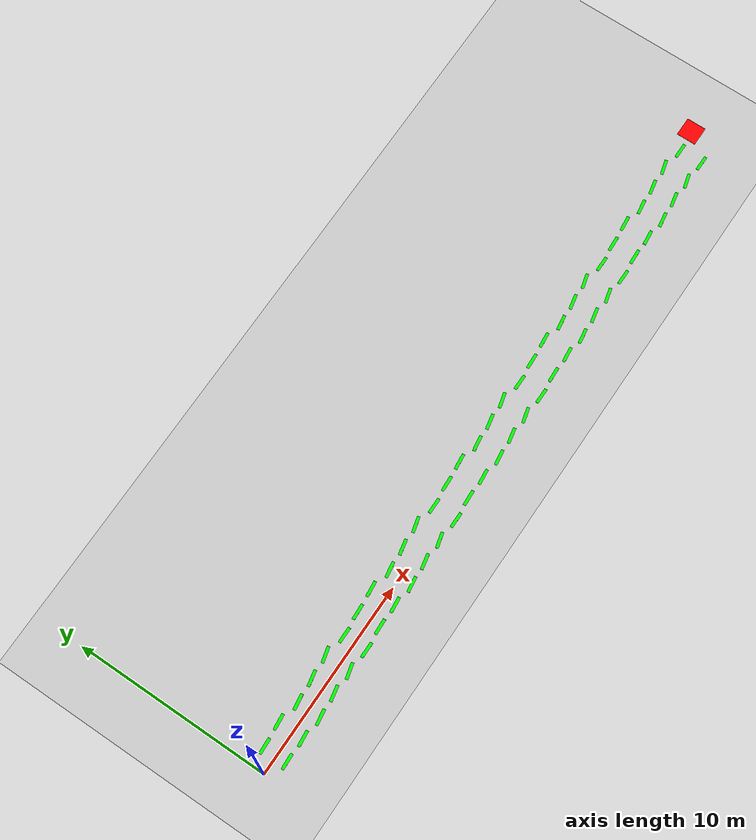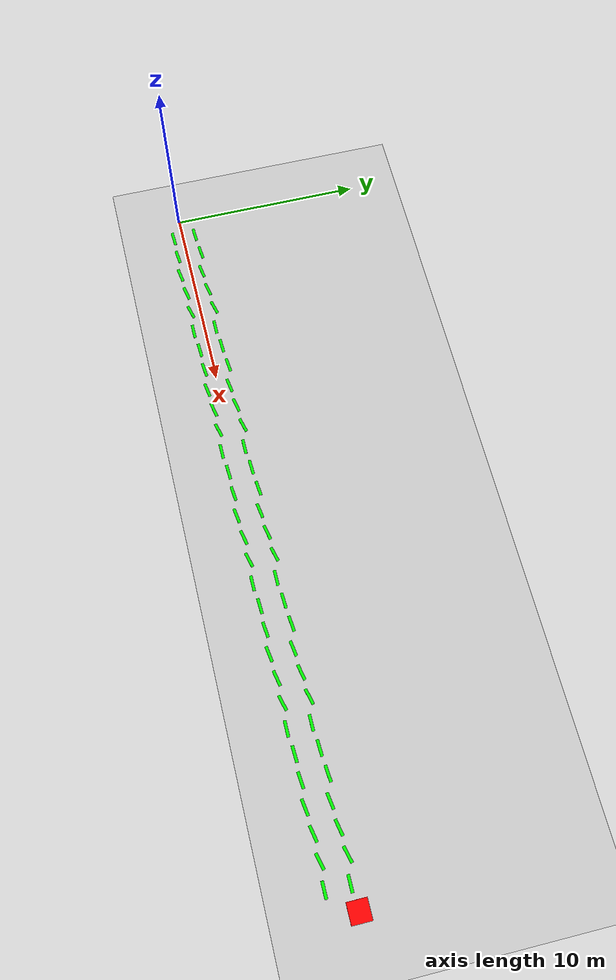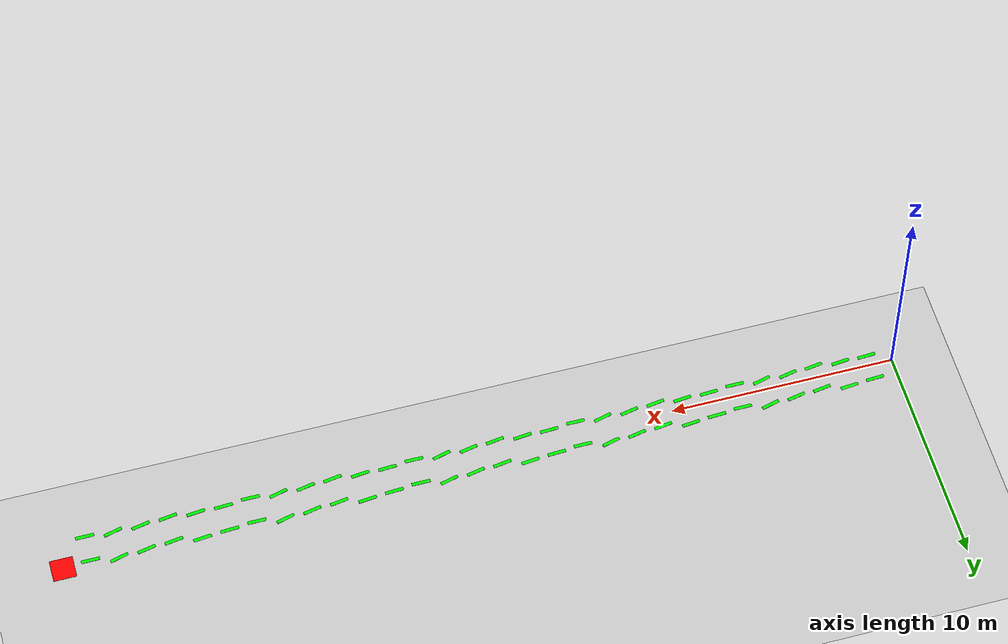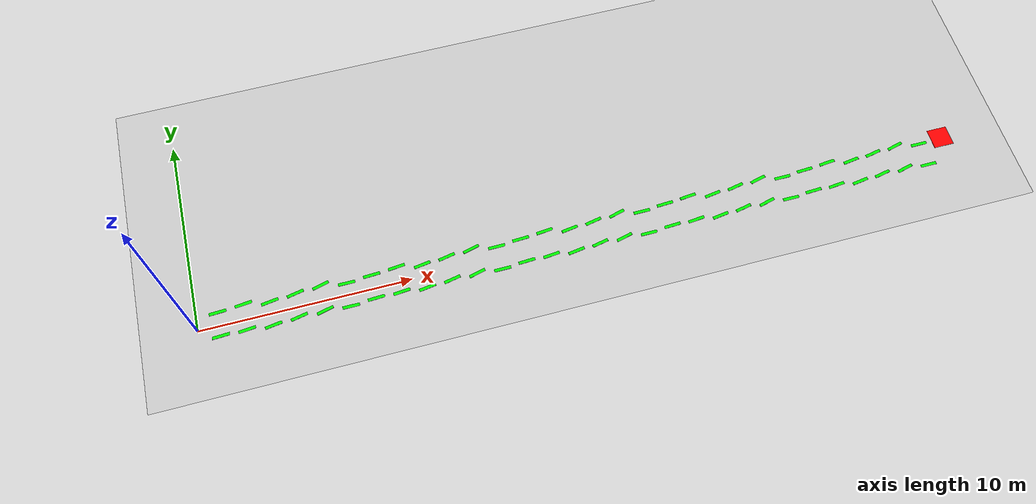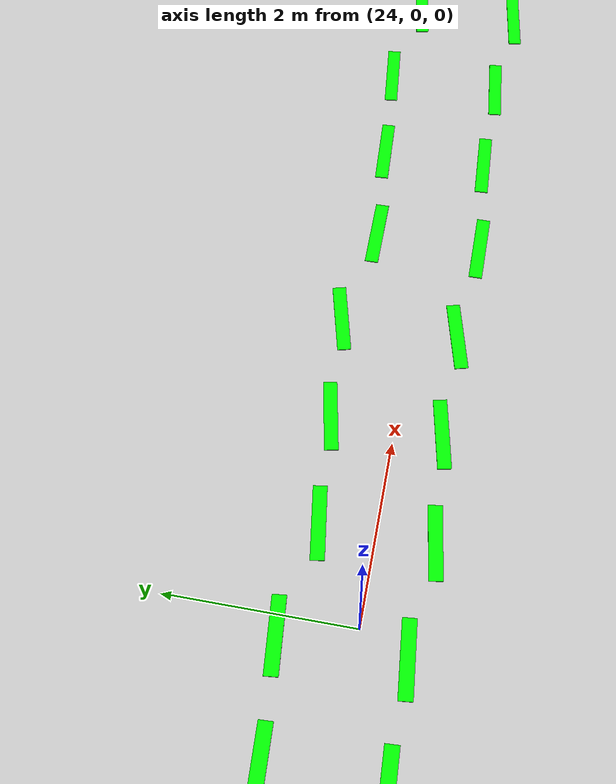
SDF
<?xml version="1.0" ?>
<sdf version="1.6">
  <world name="dual_lane_broken_line_world">
    <include>
      <uri>model://sun</uri>
    </include>
    <include>
      <uri>model://ground_plane</uri>
    </include>

    <model name="lane_seg_1_left">
      <static>true</static>
      <pose>1.0 -0.5 0 0 0 0.05</pose>
      <link name="lane_link_1_left">
        <visual name="segment">
          <pose>0 0 0.02 0 0 0</pose>
          <geometry><box><size>0.8 0.15 0.01</size></box></geometry>
          <material><ambient>0 1 0 1</ambient><diffuse>0 1 0 1</diffuse></material>
        </visual>
      </link>
    </model>

    <model name="lane_seg_1_right">
      <static>true</static>
      <pose>1.0 0.7 0 0 0 0.05</pose>
      <link name="lane_link_1_right">
        <visual name="segment">
          <pose>0 0 0.02 0 0 0</pose>
          <geometry><box><size>0.8 0.15 0.01</size></box></geometry>
          <material><ambient>0 1 0 1</ambient><diffuse>0 1 0 1</diffuse></material>
        </visual>
      </link>
    </model>

    <model name="lane_seg_2_left">
      <static>true</static>
      <pose>2.2 -0.5 0 0 0 0.10</pose>
      <link name="lane_link_2_left">
        <visual name="segment">
          <pose>0 0 0.02 0 0 0</pose>
          <geometry><box><size>0.8 0.15 0.01</size></box></geometry>
          <material><ambient>0 1 0 1</ambient><diffuse>0 1 0 1</diffuse></material>
        </visual>
      </link>
    </model>

    <model name="lane_seg_2_right">
      <static>true</static>
      <pose>2.2 0.8 0 0 0 0.10</pose>
      <link name="lane_link_2_right">
        <visual name="segment">
          <pose>0 0 0.02 0 0 0</pose>
          <geometry><box><size>0.8 0.15 0.01</size></box></geometry>
          <material><ambient>0 1 0 1</ambient><diffuse>0 1 0 1</diffuse></material>
        </visual>
      </link>
    </model>

    <model name="lane_seg_3_left">
      <static>true</static>
      <pose>3.4 -0.6 0 0 0 0.15</pose>
      <link name="lane_link_3_left">
        <visual name="segment">
          <pose>0 0 0.02 0 0 0</pose>
          <geometry><box><size>0.8 0.15 0.01</size></box></geometry>
          <material><ambient>0 1 0 1</ambient><diffuse>0 1 0 1</diffuse></material>
        </visual>
      </link>
    </model>

    <model name="lane_seg_3_right">
      <static>true</static>
      <pose>3.4 0.6 0 0 0 0.15</pose>
      <link name="lane_link_3_right">
        <visual name="segment">
          <pose>0 0 0.02 0 0 0</pose>
          <geometry><box><size>0.8 0.15 0.01</size></box></geometry>
          <material><ambient>0 1 0 1</ambient><diffuse>0 1 0 1</diffuse></material>
        </visual>
      </link>
    </model>

    <model name="lane_seg_4_left">
      <static>true</static>
      <pose>4.6 -0.5 0 0 0 0.20</pose>
      <link name="lane_link_4_left">
        <visual name="segment">
          <pose>0 0 0.02 0 0 0</pose>
          <geometry><box><size>0.8 0.15 0.01</size></box></geometry>
          <material><ambient>0 1 0 1</ambient><diffuse>0 1 0 1</diffuse></material>
        </visual>
      </link>
    </model>

    <model name="lane_seg_4_right">
      <static>true</static>
      <pose>4.6 0.7 0 0 0 0.20</pose>
      <link name="lane_link_4_right">
        <visual name="segment">
          <pose>0 0 0.02 0 0 0</pose>
          <geometry><box><size>0.8 0.15 0.01</size></box></geometry>
          <material><ambient>0 1 0 1</ambient><diffuse>0 1 0 1</diffuse></material>
        </visual>
      </link>
    </model>

    <model name="lane_seg_5_left">
      <static>true</static>
      <pose>5.8 -0.5 0 0 0 0.25</pose>
      <link name="lane_link_5_left">
        <visual name="segment">
          <pose>0 0 0.02 0 0 0</pose>
          <geometry><box><size>0.8 0.15 0.01</size></box></geometry>
          <material><ambient>0 1 0 1</ambient><diffuse>0 1 0 1</diffuse></material>
        </visual>
      </link>
    </model>

    <model name="lane_seg_5_right">
      <static>true</static>
      <pose>5.8 0.8 0 0 0 0.25</pose>
      <link name="lane_link_5_right">
        <visual name="segment">
          <pose>0 0 0.02 0 0 0</pose>
          <geometry><box><size>0.8 0.15 0.01</size></box></geometry>
          <material><ambient>0 1 0 1</ambient><diffuse>0 1 0 1</diffuse></material>
        </visual>
      </link>
    </model>

    <model name="lane_seg_6_left">
      <static>true</static>
      <pose>7.0 -0.6 0 0 0 0.00</pose>
      <link name="lane_link_6_left">
        <visual name="segment">
          <pose>0 0 0.02 0 0 0</pose>
          <geometry><box><size>0.8 0.15 0.01</size></box></geometry>
          <material><ambient>0 1 0 1</ambient><diffuse>0 1 0 1</diffuse></material>
        </visual>
      </link>
    </model>

    <model name="lane_seg_6_right">
      <static>true</static>
      <pose>7.0 0.6 0 0 0 0.00</pose>
      <link name="lane_link_6_right">
        <visual name="segment">
          <pose>0 0 0.02 0 0 0</pose>
          <geometry><box><size>0.8 0.15 0.01</size></box></geometry>
          <material><ambient>0 1 0 1</ambient><diffuse>0 1 0 1</diffuse></material>
        </visual>
      </link>
    </model>

    <model name="lane_seg_7_left">
      <static>true</static>
      <pose>8.2 -0.5 0 0 0 0.05</pose>
      <link name="lane_link_7_left">
        <visual name="segment">
          <pose>0 0 0.02 0 0 0</pose>
          <geometry><box><size>0.8 0.15 0.01</size></box></geometry>
          <material><ambient>0 1 0 1</ambient><diffuse>0 1 0 1</diffuse></material>
        </visual>
      </link>
    </model>

    <model name="lane_seg_7_right">
      <static>true</static>
      <pose>8.2 0.7 0 0 0 0.05</pose>
      <link name="lane_link_7_right">
        <visual name="segment">
          <pose>0 0 0.02 0 0 0</pose>
          <geometry><box><size>0.8 0.15 0.01</size></box></geometry>
          <material><ambient>0 1 0 1</ambient><diffuse>0 1 0 1</diffuse></material>
        </visual>
      </link>
    </model>

    <model name="lane_seg_8_left">
      <static>true</static>
      <pose>9.4 -0.5 0 0 0 0.10</pose>
      <link name="lane_link_8_left">
        <visual name="segment">
          <pose>0 0 0.02 0 0 0</pose>
          <geometry><box><size>0.8 0.15 0.01</size></box></geometry>
          <material><ambient>0 1 0 1</ambient><diffuse>0 1 0 1</diffuse></material>
        </visual>
      </link>
    </model>

    <model name="lane_seg_8_right">
      <static>true</static>
      <pose>9.4 0.8 0 0 0 0.10</pose>
      <link name="lane_link_8_right">
        <visual name="segment">
          <pose>0 0 0.02 0 0 0</pose>
          <geometry><box><size>0.8 0.15 0.01</size></box></geometry>
          <material><ambient>0 1 0 1</ambient><diffuse>0 1 0 1</diffuse></material>
        </visual>
      </link>
    </model>

    <model name="lane_seg_9_left">
      <static>true</static>
      <pose>10.6 -0.6 0 0 0 0.15</pose>
      <link name="lane_link_9_left">
        <visual name="segment">
          <pose>0 0 0.02 0 0 0</pose>
          <geometry><box><size>0.8 0.15 0.01</size></box></geometry>
          <material><ambient>0 1 0 1</ambient><diffuse>0 1 0 1</diffuse></material>
        </visual>
      </link>
    </model>

    <model name="lane_seg_9_right">
      <static>true</static>
      <pose>10.6 0.6 0 0 0 0.15</pose>
      <link name="lane_link_9_right">
        <visual name="segment">
          <pose>0 0 0.02 0 0 0</pose>
          <geometry><box><size>0.8 0.15 0.01</size></box></geometry>
          <material><ambient>0 1 0 1</ambient><diffuse>0 1 0 1</diffuse></material>
        </visual>
      </link>
    </model>

    <model name="lane_seg_10_left">
      <static>true</static>
      <pose>11.8 -0.5 0 0 0 0.20</pose>
      <link name="lane_link_10_left">
        <visual name="segment">
          <pose>0 0 0.02 0 0 0</pose>
          <geometry><box><size>0.8 0.15 0.01</size></box></geometry>
          <material><ambient>0 1 0 1</ambient><diffuse>0 1 0 1</diffuse></material>
        </visual>
      </link>
    </model>

    <model name="lane_seg_10_right">
      <static>true</static>
      <pose>11.8 0.7 0 0 0 0.20</pose>
      <link name="lane_link_10_right">
        <visual name="segment">
          <pose>0 0 0.02 0 0 0</pose>
          <geometry><box><size>0.8 0.15 0.01</size></box></geometry>
          <material><ambient>0 1 0 1</ambient><diffuse>0 1 0 1</diffuse></material>
        </visual>
      </link>
    </model>

    <model name="lane_seg_11_left">
      <static>true</static>
      <pose>13.0 -0.5 0 0 0 0.25</pose>
      <link name="lane_link_11_left">
        <visual name="segment">
          <pose>0 0 0.02 0 0 0</pose>
          <geometry><box><size>0.8 0.15 0.01</size></box></geometry>
          <material><ambient>0 1 0 1</ambient><diffuse>0 1 0 1</diffuse></material>
        </visual>
      </link>
    </model>

    <model name="lane_seg_11_right">
      <static>true</static>
      <pose>13.0 0.8 0 0 0 0.25</pose>
      <link name="lane_link_11_right">
        <visual name="segment">
          <pose>0 0 0.02 0 0 0</pose>
          <geometry><box><size>0.8 0.15 0.01</size></box></geometry>
          <material><ambient>0 1 0 1</ambient><diffuse>0 1 0 1</diffuse></material>
        </visual>
      </link>
    </model>

    <model name="lane_seg_12_left">
      <static>true</static>
      <pose>14.2 -0.6 0 0 0 0.00</pose>
      <link name="lane_link_12_left">
        <visual name="segment">
          <pose>0 0 0.02 0 0 0</pose>
          <geometry><box><size>0.8 0.15 0.01</size></box></geometry>
          <material><ambient>0 1 0 1</ambient><diffuse>0 1 0 1</diffuse></material>
        </visual>
      </link>
    </model>

    <model name="lane_seg_12_right">
      <static>true</static>
      <pose>14.2 0.6 0 0 0 0.00</pose>
      <link name="lane_link_12_right">
        <visual name="segment">
          <pose>0 0 0.02 0 0 0</pose>
          <geometry><box><size>0.8 0.15 0.01</size></box></geometry>
          <material><ambient>0 1 0 1</ambient><diffuse>0 1 0 1</diffuse></material>
        </visual>
      </link>
    </model>

    <model name="lane_seg_13_left">
      <static>true</static>
      <pose>15.4 -0.5 0 0 0 0.05</pose>
      <link name="lane_link_13_left">
        <visual name="segment">
          <pose>0 0 0.02 0 0 0</pose>
          <geometry><box><size>0.8 0.15 0.01</size></box></geometry>
          <material><ambient>0 1 0 1</ambient><diffuse>0 1 0 1</diffuse></material>
        </visual>
      </link>
    </model>

    <model name="lane_seg_13_right">
      <static>true</static>
      <pose>15.4 0.7 0 0 0 0.05</pose>
      <link name="lane_link_13_right">
        <visual name="segment">
          <pose>0 0 0.02 0 0 0</pose>
          <geometry><box><size>0.8 0.15 0.01</size></box></geometry>
          <material><ambient>0 1 0 1</ambient><diffuse>0 1 0 1</diffuse></material>
        </visual>
      </link>
    </model>

    <model name="lane_seg_14_left">
      <static>true</static>
      <pose>16.6 -0.5 0 0 0 0.10</pose>
      <link name="lane_link_14_left">
        <visual name="segment">
          <pose>0 0 0.02 0 0 0</pose>
          <geometry><box><size>0.8 0.15 0.01</size></box></geometry>
          <material><ambient>0 1 0 1</ambient><diffuse>0 1 0 1</diffuse></material>
        </visual>
      </link>
    </model>

    <model name="lane_seg_14_right">
      <static>true</static>
      <pose>16.6 0.8 0 0 0 0.10</pose>
      <link name="lane_link_14_right">
        <visual name="segment">
          <pose>0 0 0.02 0 0 0</pose>
          <geometry><box><size>0.8 0.15 0.01</size></box></geometry>
          <material><ambient>0 1 0 1</ambient><diffuse>0 1 0 1</diffuse></material>
        </visual>
      </link>
    </model>

    <model name="lane_seg_15_left">
      <static>true</static>
      <pose>17.8 -0.6 0 0 0 0.15</pose>
      <link name="lane_link_15_left">
        <visual name="segment">
          <pose>0 0 0.02 0 0 0</pose>
          <geometry><box><size>0.8 0.15 0.01</size></box></geometry>
          <material><ambient>0 1 0 1</ambient><diffuse>0 1 0 1</diffuse></material>
        </visual>
      </link>
    </model>

    <model name="lane_seg_15_right">
      <static>true</static>
      <pose>17.8 0.6 0 0 0 0.15</pose>
      <link name="lane_link_15_right">
        <visual name="segment">
          <pose>0 0 0.02 0 0 0</pose>
          <geometry><box><size>0.8 0.15 0.01</size></box></geometry>
          <material><ambient>0 1 0 1</ambient><diffuse>0 1 0 1</diffuse></material>
        </visual>
      </link>
    </model>

    <model name="lane_seg_16_left">
      <static>true</static>
      <pose>19.0 -0.5 0 0 0 0.20</pose>
      <link name="lane_link_16_left">
        <visual name="segment">
          <pose>0 0 0.02 0 0 0</pose>
          <geometry><box><size>0.8 0.15 0.01</size></box></geometry>
          <material><ambient>0 1 0 1</ambient><diffuse>0 1 0 1</diffuse></material>
        </visual>
      </link>
    </model>

    <model name="lane_seg_16_right">
      <static>true</static>
      <pose>19.0 0.7 0 0 0 0.20</pose>
      <link name="lane_link_16_right">
        <visual name="segment">
          <pose>0 0 0.02 0 0 0</pose>
          <geometry><box><size>0.8 0.15 0.01</size></box></geometry>
          <material><ambient>0 1 0 1</ambient><diffuse>0 1 0 1</diffuse></material>
        </visual>
      </link>
    </model>

    <model name="lane_seg_17_left">
      <static>true</static>
      <pose>20.2 -0.5 0 0 0 0.25</pose>
      <link name="lane_link_17_left">
        <visual name="segment">
          <pose>0 0 0.02 0 0 0</pose>
          <geometry><box><size>0.8 0.15 0.01</size></box></geometry>
          <material><ambient>0 1 0 1</ambient><diffuse>0 1 0 1</diffuse></material>
        </visual>
      </link>
    </model>

    <model name="lane_seg_17_right">
      <static>true</static>
      <pose>20.2 0.8 0 0 0 0.25</pose>
      <link name="lane_link_17_right">
        <visual name="segment">
          <pose>0 0 0.02 0 0 0</pose>
          <geometry><box><size>0.8 0.15 0.01</size></box></geometry>
          <material><ambient>0 1 0 1</ambient><diffuse>0 1 0 1</diffuse></material>
        </visual>
      </link>
    </model>

    <model name="lane_seg_18_left">
      <static>true</static>
      <pose>21.4 -0.6 0 0 0 0.00</pose>
      <link name="lane_link_18_left">
        <visual name="segment">
          <pose>0 0 0.02 0 0 0</pose>
          <geometry><box><size>0.8 0.15 0.01</size></box></geometry>
          <material><ambient>0 1 0 1</ambient><diffuse>0 1 0 1</diffuse></material>
        </visual>
      </link>
    </model>

    <model name="lane_seg_18_right">
      <static>true</static>
      <pose>21.4 0.6 0 0 0 0.00</pose>
      <link name="lane_link_18_right">
        <visual name="segment">
          <pose>0 0 0.02 0 0 0</pose>
          <geometry><box><size>0.8 0.15 0.01</size></box></geometry>
          <material><ambient>0 1 0 1</ambient><diffuse>0 1 0 1</diffuse></material>
        </visual>
      </link>
    </model>

    <model name="lane_seg_19_left">
      <static>true</static>
      <pose>22.6 -0.5 0 0 0 0.05</pose>
      <link name="lane_link_19_left">
        <visual name="segment">
          <pose>0 0 0.02 0 0 0</pose>
          <geometry><box><size>0.8 0.15 0.01</size></box></geometry>
          <material><ambient>0 1 0 1</ambient><diffuse>0 1 0 1</diffuse></material>
        </visual>
      </link>
    </model>

    <model name="lane_seg_19_right">
      <static>true</static>
      <pose>22.6 0.7 0 0 0 0.05</pose>
      <link name="lane_link_19_right">
        <visual name="segment">
          <pose>0 0 0.02 0 0 0</pose>
          <geometry><box><size>0.8 0.15 0.01</size></box></geometry>
          <material><ambient>0 1 0 1</ambient><diffuse>0 1 0 1</diffuse></material>
        </visual>
      </link>
    </model>

    <model name="lane_seg_20_left">
      <static>true</static>
      <pose>23.8 -0.5 0 0 0 0.10</pose>
      <link name="lane_link_20_left">
        <visual name="segment">
          <pose>0 0 0.02 0 0 0</pose>
          <geometry><box><size>0.8 0.15 0.01</size></box></geometry>
          <material><ambient>0 1 0 1</ambient><diffuse>0 1 0 1</diffuse></material>
        </visual>
      </link>
    </model>

    <model name="lane_seg_20_right">
      <static>true</static>
      <pose>23.8 0.8 0 0 0 0.10</pose>
      <link name="lane_link_20_right">
        <visual name="segment">
          <pose>0 0 0.02 0 0 0</pose>
          <geometry><box><size>0.8 0.15 0.01</size></box></geometry>
          <material><ambient>0 1 0 1</ambient><diffuse>0 1 0 1</diffuse></material>
        </visual>
      </link>
    </model>

    <model name="lane_seg_21_left">
      <static>true</static>
      <pose>25.0 -0.6 0 0 0 0.15</pose>
      <link name="lane_link_21_left">
        <visual name="segment">
          <pose>0 0 0.02 0 0 0</pose>
          <geometry><box><size>0.8 0.15 0.01</size></box></geometry>
          <material><ambient>0 1 0 1</ambient><diffuse>0 1 0 1</diffuse></material>
        </visual>
      </link>
    </model>

    <model name="lane_seg_21_right">
      <static>true</static>
      <pose>25.0 0.6 0 0 0 0.15</pose>
      <link name="lane_link_21_right">
        <visual name="segment">
          <pose>0 0 0.02 0 0 0</pose>
          <geometry><box><size>0.8 0.15 0.01</size></box></geometry>
          <material><ambient>0 1 0 1</ambient><diffuse>0 1 0 1</diffuse></material>
        </visual>
      </link>
    </model>

    <model name="lane_seg_22_left">
      <static>true</static>
      <pose>26.2 -0.5 0 0 0 0.20</pose>
      <link name="lane_link_22_left">
        <visual name="segment">
          <pose>0 0 0.02 0 0 0</pose>
          <geometry><box><size>0.8 0.15 0.01</size></box></geometry>
          <material><ambient>0 1 0 1</ambient><diffuse>0 1 0 1</diffuse></material>
        </visual>
      </link>
    </model>

    <model name="lane_seg_22_right">
      <static>true</static>
      <pose>26.2 0.7 0 0 0 0.20</pose>
      <link name="lane_link_22_right">
        <visual name="segment">
          <pose>0 0 0.02 0 0 0</pose>
          <geometry><box><size>0.8 0.15 0.01</size></box></geometry>
          <material><ambient>0 1 0 1</ambient><diffuse>0 1 0 1</diffuse></material>
        </visual>
      </link>
    </model>

    <model name="lane_seg_23_left">
      <static>true</static>
      <pose>27.4 -0.5 0 0 0 0.25</pose>
      <link name="lane_link_23_left">
        <visual name="segment">
          <pose>0 0 0.02 0 0 0</pose>
          <geometry><box><size>0.8 0.15 0.01</size></box></geometry>
          <material><ambient>0 1 0 1</ambient><diffuse>0 1 0 1</diffuse></material>
        </visual>
      </link>
    </model>

    <model name="lane_seg_23_right">
      <static>true</static>
      <pose>27.4 0.8 0 0 0 0.25</pose>
      <link name="lane_link_23_right">
        <visual name="segment">
          <pose>0 0 0.02 0 0 0</pose>
          <geometry><box><size>0.8 0.15 0.01</size></box></geometry>
          <material><ambient>0 1 0 1</ambient><diffuse>0 1 0 1</diffuse></material>
        </visual>
      </link>
    </model>

    <model name="lane_seg_24_left">
      <static>true</static>
      <pose>28.6 -0.6 0 0 0 0.00</pose>
      <link name="lane_link_24_left">
        <visual name="segment">
          <pose>0 0 0.02 0 0 0</pose>
          <geometry><box><size>0.8 0.15 0.01</size></box></geometry>
          <material><ambient>0 1 0 1</ambient><diffuse>0 1 0 1</diffuse></material>
        </visual>
      </link>
    </model>

    <model name="lane_seg_24_right">
      <static>true</static>
      <pose>28.6 0.6 0 0 0 0.00</pose>
      <link name="lane_link_24_right">
        <visual name="segment">
          <pose>0 0 0.02 0 0 0</pose>
          <geometry><box><size>0.8 0.15 0.01</size></box></geometry>
          <material><ambient>0 1 0 1</ambient><diffuse>0 1 0 1</diffuse></material>
        </visual>
      </link>
    </model>

    <model name="lane_seg_25_left">
      <static>true</static>
      <pose>29.8 -0.5 0 0 0 0.05</pose>
      <link name="lane_link_25_left">
        <visual name="segment">
          <pose>0 0 0.02 0 0 0</pose>
          <geometry><box><size>0.8 0.15 0.01</size></box></geometry>
          <material><ambient>0 1 0 1</ambient><diffuse>0 1 0 1</diffuse></material>
        </visual>
      </link>
    </model>

    <model name="lane_seg_25_right">
      <static>true</static>
      <pose>29.8 0.7 0 0 0 0.05</pose>
      <link name="lane_link_25_right">
        <visual name="segment">
          <pose>0 0 0.02 0 0 0</pose>
          <geometry><box><size>0.8 0.15 0.01</size></box></geometry>
          <material><ambient>0 1 0 1</ambient><diffuse>0 1 0 1</diffuse></material>
        </visual>
      </link>
    </model>

    <model name="lane_seg_26_left">
      <static>true</static>
      <pose>31.0 -0.5 0 0 0 0.10</pose>
      <link name="lane_link_26_left">
        <visual name="segment">
          <pose>0 0 0.02 0 0 0</pose>
          <geometry><box><size>0.8 0.15 0.01</size></box></geometry>
          <material><ambient>0 1 0 1</ambient><diffuse>0 1 0 1</diffuse></material>
        </visual>
      </link>
    </model>

    <model name="lane_seg_26_right">
      <static>true</static>
      <pose>31.0 0.8 0 0 0 0.10</pose>
      <link name="lane_link_26_right">
        <visual name="segment">
          <pose>0 0 0.02 0 0 0</pose>
          <geometry><box><size>0.8 0.15 0.01</size></box></geometry>
          <material><ambient>0 1 0 1</ambient><diffuse>0 1 0 1</diffuse></material>
        </visual>
      </link>
    </model>

    <model name="lane_seg_27_left">
      <static>true</static>
      <pose>32.2 -0.6 0 0 0 0.15</pose>
      <link name="lane_link_27_left">
        <visual name="segment">
          <pose>0 0 0.02 0 0 0</pose>
          <geometry><box><size>0.8 0.15 0.01</size></box></geometry>
          <material><ambient>0 1 0 1</ambient><diffuse>0 1 0 1</diffuse></material>
        </visual>
      </link>
    </model>

    <model name="lane_seg_27_right">
      <static>true</static>
      <pose>32.2 0.6 0 0 0 0.15</pose>
      <link name="lane_link_27_right">
        <visual name="segment">
          <pose>0 0 0.02 0 0 0</pose>
          <geometry><box><size>0.8 0.15 0.01</size></box></geometry>
          <material><ambient>0 1 0 1</ambient><diffuse>0 1 0 1</diffuse></material>
        </visual>
      </link>
    </model>

    <model name="lane_seg_28_left">
      <static>true</static>
      <pose>33.4 -0.5 0 0 0 0.20</pose>
      <link name="lane_link_28_left">
        <visual name="segment">
          <pose>0 0 0.02 0 0 0</pose>
          <geometry><box><size>0.8 0.15 0.01</size></box></geometry>
          <material><ambient>0 1 0 1</ambient><diffuse>0 1 0 1</diffuse></material>
        </visual>
      </link>
    </model>

    <model name="lane_seg_28_right">
      <static>true</static>
      <pose>33.4 0.7 0 0 0 0.20</pose>
      <link name="lane_link_28_right">
        <visual name="segment">
          <pose>0 0 0.02 0 0 0</pose>
          <geometry><box><size>0.8 0.15 0.01</size></box></geometry>
          <material><ambient>0 1 0 1</ambient><diffuse>0 1 0 1</diffuse></material>
        </visual>
      </link>
    </model>

    <model name="lane_seg_29_left">
      <static>true</static>
      <pose>34.6 -0.5 0 0 0 0.25</pose>
      <link name="lane_link_29_left">
        <visual name="segment">
          <pose>0 0 0.02 0 0 0</pose>
          <geometry><box><size>0.8 0.15 0.01</size></box></geometry>
          <material><ambient>0 1 0 1</ambient><diffuse>0 1 0 1</diffuse></material>
        </visual>
      </link>
    </model>

    <model name="lane_seg_29_right">
      <static>true</static>
      <pose>34.6 0.8 0 0 0 0.25</pose>
      <link name="lane_link_29_right">
        <visual name="segment">
          <pose>0 0 0.02 0 0 0</pose>
          <geometry><box><size>0.8 0.15 0.01</size></box></geometry>
          <material><ambient>0 1 0 1</ambient><diffuse>0 1 0 1</diffuse></material>
        </visual>
      </link>
    </model>

    <model name="lane_seg_30_left">
      <static>true</static>
      <pose>35.8 -0.6 0 0 0 0.00</pose>
      <link name="lane_link_30_left">
        <visual name="segment">
          <pose>0 0 0.02 0 0 0</pose>
          <geometry><box><size>0.8 0.15 0.01</size></box></geometry>
          <material><ambient>0 1 0 1</ambient><diffuse>0 1 0 1</diffuse></material>
        </visual>
      </link>
    </model>

    <model name="lane_seg_30_right">
      <static>true</static>
      <pose>35.8 0.6 0 0 0 0.00</pose>
      <link name="lane_link_30_right">
        <visual name="segment">
          <pose>0 0 0.02 0 0 0</pose>
          <geometry><box><size>0.8 0.15 0.01</size></box></geometry>
          <material><ambient>0 1 0 1</ambient><diffuse>0 1 0 1</diffuse></material>
        </visual>
      </link>
    </model>

    <model name="destination_zone">
      <pose>37.0 0.7 0 0 0 0</pose>
      <static>true</static>
      <link name="link">
        <visual name="visual">
          <geometry>
            <box>
              <size>1.0 1.0 0.01</size>
            </box>
          </geometry>
          <material>
            <ambient>1 0 0 1</ambient>
            <diffuse>1 0 0 1</diffuse>
          </material>
        </visual>
      </link>
    </model>

  </world>
</sdf>
